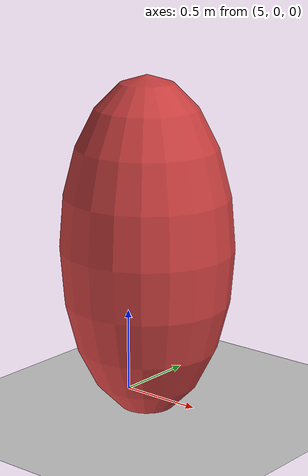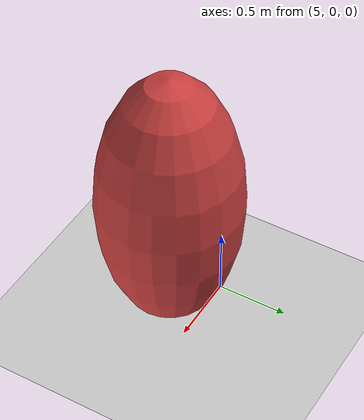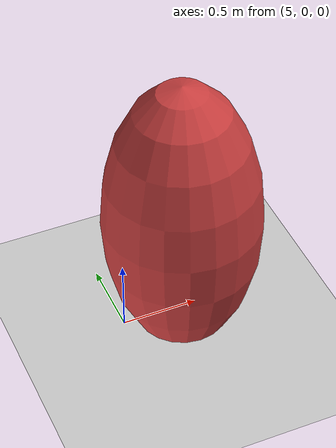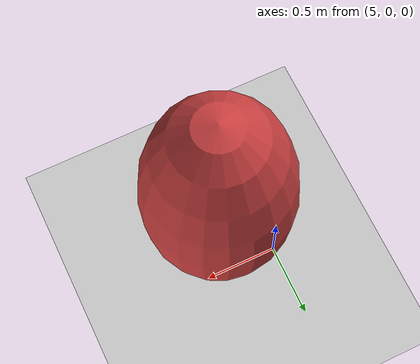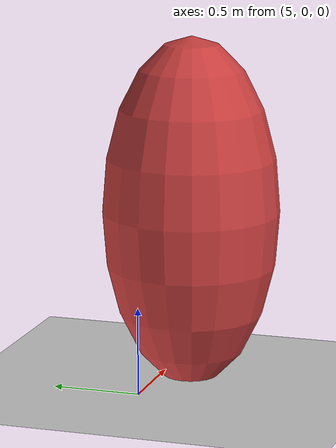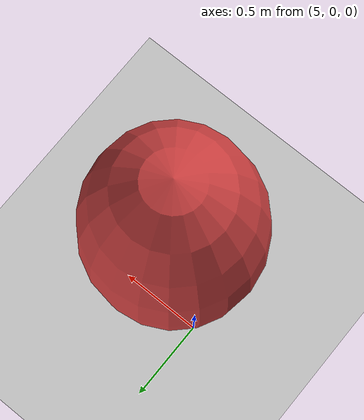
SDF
<?xml version="1.0"?>
<sdf version="1.10">
  <world name="my_rgl_simple">
    <plugin filename="gz-sim-physics-system" name="gz::sim::systems::Physics"/>
    <plugin filename="gz-sim-user-commands-system" name="gz::sim::systems::UserCommands"/>
    <plugin filename="gz-sim-scene-broadcaster-system" name="gz::sim::systems::SceneBroadcaster"/>
    <plugin filename="gz-sim-sensors-system" name="gz::sim::systems::Sensors">
      <render_engine>ogre2</render_engine>
    </plugin>
    <physics name="simple_250hz" type="ode">
      <max_step_size>0.004</max_step_size>
      <real_time_factor>1.0</real_time_factor>
      <real_time_update_rate>250</real_time_update_rate>
    </physics>
    <gravity>0 0 -9.8</gravity>
    <scene>
      <ambient>0.4 0.4 0.4 1</ambient>
      <background>0.7 0.7 0.7 1</background>
      <shadows>true</shadows>
    </scene>
    <light name="sun" type="directional">
      <pose>5 0 20 0 0 0</pose>
      <cast_shadows>true</cast_shadows>
      <direction>-0.4 0.2 -0.9</direction>
    </light>
    <model name="ground_plane">
      <static>true</static>
      <link name="link">
        <collision name="collision">
          <geometry><plane><normal>0 0 1</normal><size>30 20</size></plane></geometry>
        </collision>
        <visual name="visual">
          <geometry><plane><normal>0 0 1</normal><size>30 20</size></plane></geometry>
        </visual>
      </link>
    </model>
    <model name="static_obstacle_1">
      <static>true</static>
      <pose>5.32173 -0.210448 1.0 0 0 0</pose>
      <link name="link">
        <collision name="collision">
          <geometry><ellipsoid><radii>0.505 0.5 1.0</radii></ellipsoid></geometry>
        </collision>
        <visual name="visual">
          <geometry><ellipsoid><radii>0.505 0.5 1.0</radii></ellipsoid></geometry>
          <material><ambient>0.7 0.2 0.2 1</ambient><diffuse>0.8 0.25 0.25 1</diffuse></material>
        </visual>
      </link>
    </model>
  </world>
</sdf>
